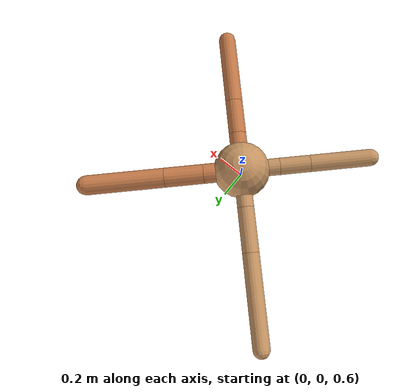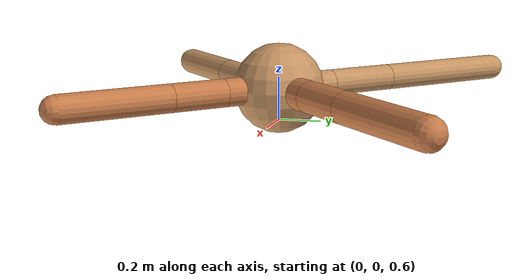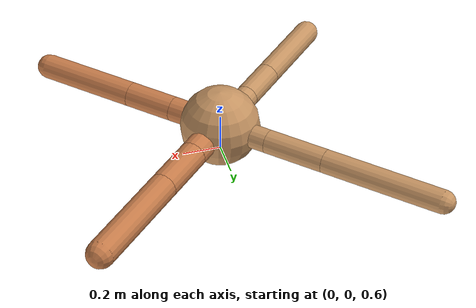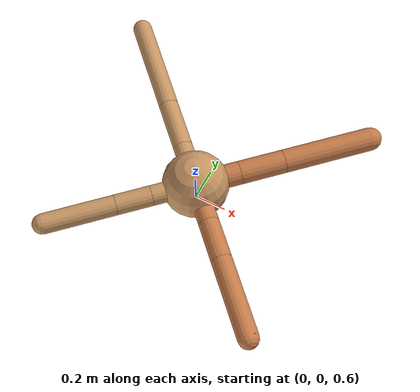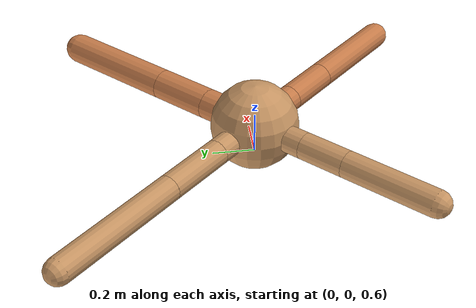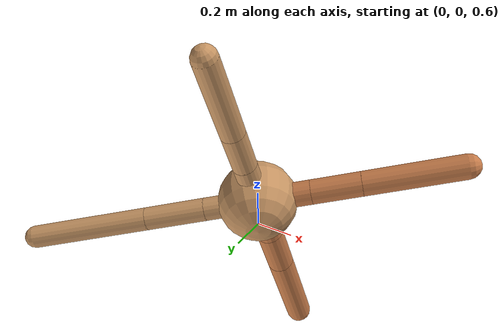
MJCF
<?xml version="1.0" ?>
<mujoco model="ant">

	<compiler angle="degree" coordinate="local" inertiafromgeom="true"/>

	<option integrator="RK4" timestep="0.01"/>

	<custom>

		<numeric data="0.0 0.0 0.55 1.0 0.0 0.0 0.0 0.0 1.0 0.0 -1.0 0.0 -1.0 0.0 1.0" name="init_qpos"/>

	</custom>

	<default>

		<joint armature="1" damping="1" limited="true"/>

		<geom conaffinity="0" condim="3" density="5.0" friction="1.5 0.1 0.1" margin="0.01" rgba="0.8 0.6 0.4 1"/>

	</default>

	<worldbody>

		<body name="torso" pos="0 0 0.75">

			<geom name="torso_geom" pos="0 0 0" size="0.2099145756048131" type="sphere"/>

			<!--joint armature="0" damping="0" limited="false" margin="0.01" name="root" pos="0 0 0" type="free"/-->

			<body name="front_left_leg" pos="0 0 0">

				<geom fromto="0 0 0 0.2 0.2 0" name="aux_1_geom" size="0.07357018347493365" type="capsule" rgba=".8 .5 .3 1"/>

				<body name="aux_1" pos="0.2 0.2 0">

					<joint axis="0 0 1" name="hip_1" pos="0.0 0.0 0.0" range="-40 40" type="hinge"/>

					<geom fromto="0 0 0 0.20387201426688406 0.20387201426688406 0" name="left_leg_geom" size="0.07357018347493365" type="capsule" rgba=".8 .5 .3 1"/>

					<body pos="0.20387201426688406 0.20387201426688406 0" name="front_left_foot">

						<joint axis="-1 1 0" name="ankle_1" pos="0.0 0.0 0.0" range="30 100" type="hinge"/>

						<geom fromto="0 0 0 0.4077440285337681 0.4077440285337681 0" name="left_ankle_geom" size="0.07357018347493365" type="capsule" rgba=".8 .5 .3 1"/>

					</body>

				</body>

			</body>

			<body name="front_right_leg" pos="0 0 0">

				<geom fromto="0 0 0 -0.2 0.2 0" name="aux_2_geom" size="0.061713308062577375" type="capsule"/>

				<body name="aux_2" pos="-0.2 0.2 0">

					<joint axis="0 0 1" name="hip_2" pos="0.0 0.0 0.0" range="-40 40" type="hinge"/>

					<geom fromto="0 0 0 -0.23186012018930646 0.23186012018930646 0" name="right_leg_geom" size="0.061713308062577375" type="capsule"/>

					<body pos="-0.23186012018930646 0.23186012018930646 0" name="front_right_foot">

						<joint axis="1 1 0" name="ankle_2" pos="0.0 0.0 0.0" range="-100 -30" type="hinge"/>

						<geom fromto="0 0 0 -0.4637202403786129 0.4637202403786129 0" name="right_ankle_geom" size="0.061713308062577375" type="capsule"/>

					</body>

				</body>

			</body>

			<body name="left_back_leg" pos="0 0 0">

				<geom fromto="0 0 0 -0.2 -0.2 0" name="aux_3_geom" size="0.06395213192601754" type="capsule"/>

				<body name="aux_3" pos="-0.2 -0.2 0">

					<joint axis="0 0 1" name="hip_3" pos="0.0 0.0 0.0" range="-40 40" type="hinge"/>

					<geom fromto="0 0 0 -0.16060272818567195 -0.16060272818567195 0" name="back_leg_geom" size="0.06395213192601754" type="capsule"/>

					<body pos="-0.16060272818567195 -0.16060272818567195 0" name="left_back_foot">

						<joint axis="-1 1 0" name="ankle_3" pos="0.0 0.0 0.0" range="-100 -30" type="hinge"/>

						<geom fromto="0 0 0 -0.3212054563713439 -0.3212054563713439 0" name="third_ankle_geom" size="0.06395213192601754" type="capsule"/>

					</body>

				</body>

			</body>

			<body name="right_back_leg" pos="0 0 0">

				<geom fromto="0 0 0 0.2 -0.2 0" name="aux_4_geom" size="0.06508550383229265" type="capsule" rgba=".8 .5 .3 1"/>

				<body name="aux_4" pos="0.2 -0.2 0">

					<joint axis="0 0 1" name="hip_4" pos="0.0 0.0 0.0" range="-40 40" type="hinge"/>

					<geom fromto="0 0 0 0.18421072059758864 -0.18421072059758864 0" name="rightback_leg_geom" size="0.06508550383229265" type="capsule" rgba=".8 .5 .3 1"/>

					<body pos="0.18421072059758864 -0.18421072059758864 0" name="right_back_foot">

						<joint axis="1 1 0" name="ankle_4" pos="0.0 0.0 0.0" range="30 100" type="hinge"/>

						<geom fromto="0 0 0 0.3684214411951773 -0.3684214411951773 0" name="fourth_ankle_geom" size="0.06508550383229265" type="capsule" rgba=".8 .5 .3 1"/>

					</body>

				</body>

			</body>

		</body>

	</worldbody>

	<actuator>

		<motor ctrllimited="true" ctrlrange="-1.0 1.0" joint="hip_4" gear="150"/>

		<motor ctrllimited="true" ctrlrange="-1.0 1.0" joint="ankle_4" gear="150"/>

		<motor ctrllimited="true" ctrlrange="-1.0 1.0" joint="hip_1" gear="150"/>

		<motor ctrllimited="true" ctrlrange="-1.0 1.0" joint="ankle_1" gear="150"/>

		<motor ctrllimited="true" ctrlrange="-1.0 1.0" joint="hip_2" gear="150"/>

		<motor ctrllimited="true" ctrlrange="-1.0 1.0" joint="ankle_2" gear="150"/>

		<motor ctrllimited="true" ctrlrange="-1.0 1.0" joint="hip_3" gear="150"/>

		<motor ctrllimited="true" ctrlrange="-1.0 1.0" joint="ankle_3" gear="150"/>

	</actuator>

</mujoco>
